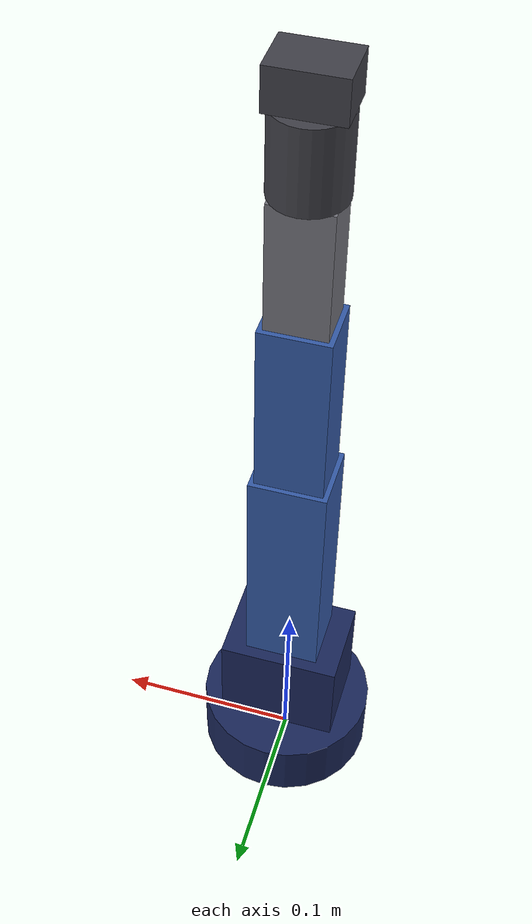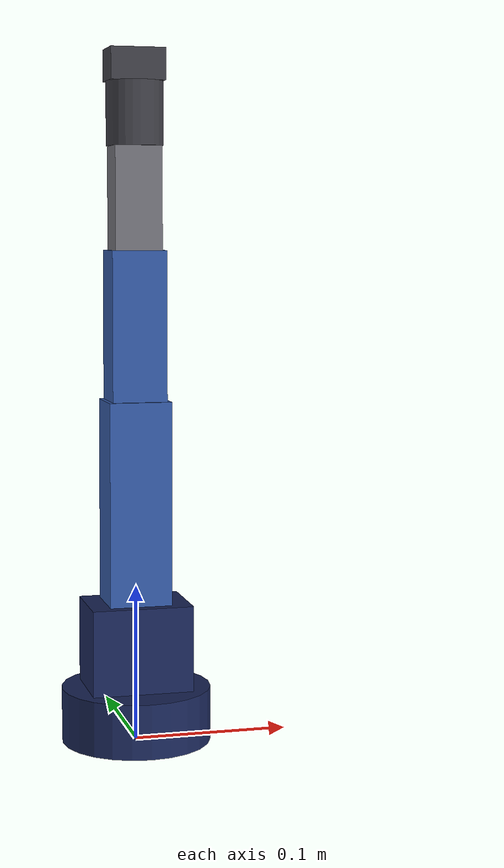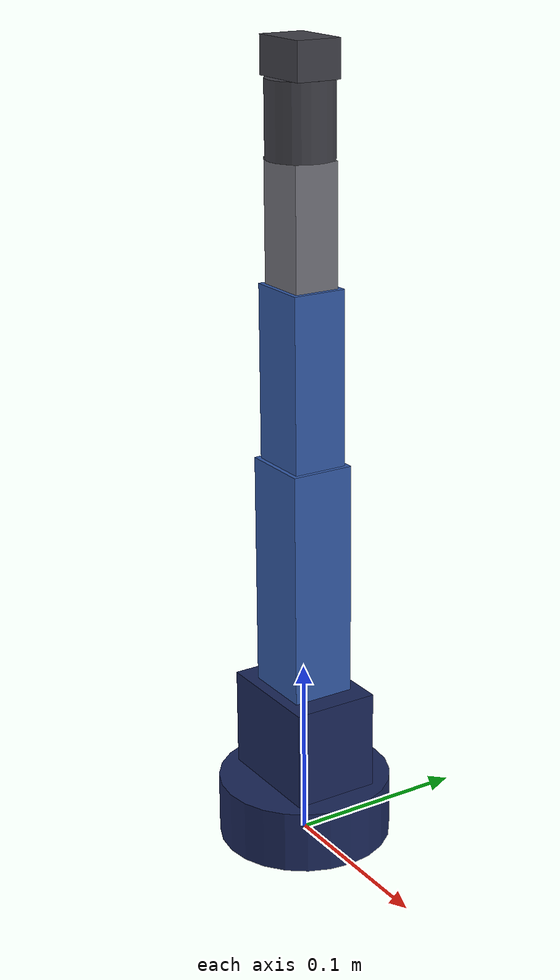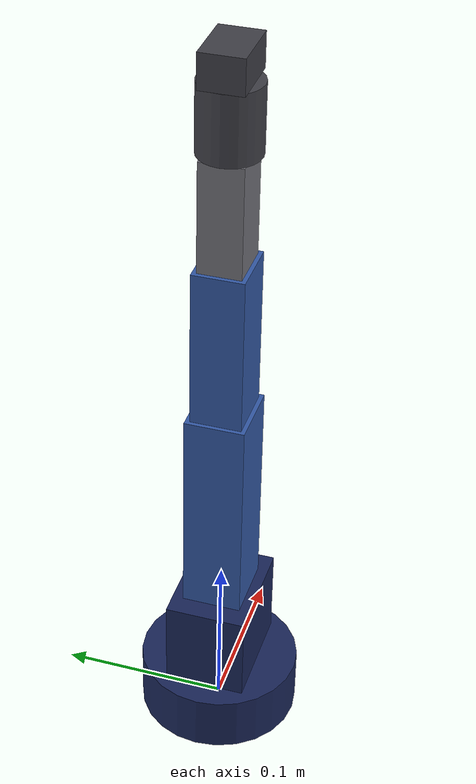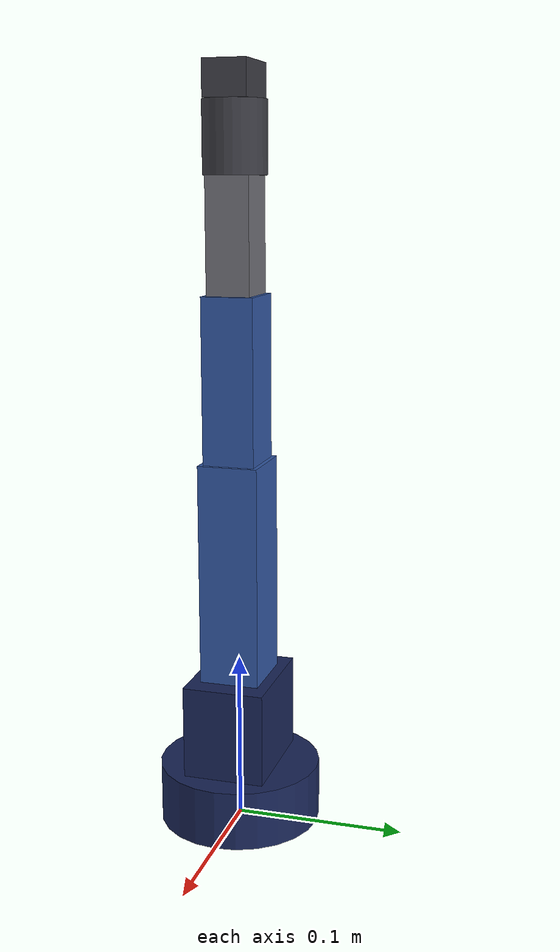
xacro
<?xml version="1.0"?>
<robot xmlns:xacro="http://www.ros.org/wiki/xacro" name="soarm101">

  <!-- Include ros2_control configuration -->
  <xacro:include filename="$(find soarm101_description)/urdf/soarm101.ros2_control.xacro"/>

  <!-- Colors -->
  <material name="soarm_dark_blue">
    <color rgba="0.1 0.15 0.35 1.0"/>
  </material>
  <material name="soarm_light_blue">
    <color rgba="0.2 0.35 0.65 1.0"/>
  </material>
  <material name="soarm_grey">
    <color rgba="0.45 0.45 0.48 1.0"/>
  </material>
  <material name="soarm_dark_grey">
    <color rgba="0.25 0.25 0.28 1.0"/>
  </material>
  <material name="soarm_white">
    <color rgba="0.9 0.9 0.92 1.0"/>
  </material>
  <material name="soarm_black">
    <color rgba="0.1 0.1 0.1 1.0"/>
  </material>

  <!-- World link (dummy root for KDL compatibility) -->
  <link name="world"/>

  <joint name="base_joint" type="fixed">
    <parent link="world"/>
    <child link="base_link"/>
    <origin xyz="0 0 0" rpy="0 0 0"/>
  </joint>

  <!-- ==================== BASE ==================== -->
  <link name="base_link">
    <visual>
      <geometry>
        <cylinder radius="0.048" length="0.035"/>
      </geometry>
      <material name="soarm_dark_blue"/>
      <origin xyz="0 0 0.0175" rpy="0 0 0"/>
    </visual>
    <collision>
      <geometry>
        <cylinder radius="0.048" length="0.035"/>
      </geometry>
      <origin xyz="0 0 0.0175" rpy="0 0 0"/>
    </collision>
  </link>

  <!-- ==================== SHOULDER (Joint 1: base rotation) ==================== -->
  <link name="shoulder_link">
    <visual>
      <!-- Shoulder housing -->
      <geometry>
        <box size="0.065 0.048 0.055"/>
      </geometry>
      <material name="soarm_dark_blue"/>
      <origin xyz="0 0 0.0275" rpy="0 0 0"/>
    </visual>
    <collision>
      <geometry>
        <box size="0.065 0.048 0.055"/>
      </geometry>
      <origin xyz="0 0 0.0275" rpy="0 0 0"/>
    </collision>
  </link>

  <joint name="shoulder_pan" type="revolute">
    <parent link="base_link"/>
    <child link="shoulder_link"/>
    <origin xyz="0 0 0.035" rpy="0 0 0"/>
    <axis xyz="0 0 1"/>
    <limit lower="-3.14159" upper="3.14159" effort="10.0" velocity="3.14"/>
    <dynamics damping="0.5" friction="0.1"/>
  </joint>

  <!-- ==================== UPPER ARM (Joint 2: shoulder lift) ==================== -->
  <link name="upper_arm_link">
    <visual>
      <!-- Upper arm link - the main long segment -->
      <geometry>
        <box size="0.040 0.035 0.130"/>
      </geometry>
      <material name="soarm_light_blue"/>
      <origin xyz="0 0 0.065" rpy="0 0 0"/>
    </visual>
    <collision>
      <geometry>
        <box size="0.040 0.035 0.130"/>
      </geometry>
      <origin xyz="0 0 0.065" rpy="0 0 0"/>
    </collision>
  </link>

  <joint name="shoulder_lift" type="revolute">
    <parent link="shoulder_link"/>
    <child link="upper_arm_link"/>
    <origin xyz="0 0 0.055" rpy="0 0 0"/>
    <axis xyz="0 1 0"/>
    <limit lower="-1.57" upper="1.57" effort="10.0" velocity="3.14"/>
    <dynamics damping="0.5" friction="0.1"/>
  </joint>

  <!-- ==================== FOREARM (Joint 3: elbow flex) ==================== -->
  <link name="forearm_link">
    <visual>
      <!-- Forearm segment -->
      <geometry>
        <box size="0.035 0.030 0.095"/>
      </geometry>
      <material name="soarm_light_blue"/>
      <origin xyz="0 0 0.0475" rpy="0 0 0"/>
    </visual>
    <collision>
      <geometry>
        <box size="0.035 0.030 0.095"/>
      </geometry>
      <origin xyz="0 0 0.0475" rpy="0 0 0"/>
    </collision>
  </link>

  <joint name="elbow_flex" type="revolute">
    <parent link="upper_arm_link"/>
    <child link="forearm_link"/>
    <origin xyz="0 0 0.130" rpy="0 0 0"/>
    <axis xyz="0 1 0"/>
    <limit lower="-1.57" upper="1.57" effort="8.0" velocity="3.14"/>
    <dynamics damping="0.3" friction="0.08"/>
  </joint>

  <!-- ==================== WRIST (Joint 4: wrist flex) ==================== -->
  <link name="wrist_link">
    <visual>
      <!-- Wrist segment -->
      <geometry>
        <box size="0.030 0.025 0.065"/>
      </geometry>
      <material name="soarm_grey"/>
      <origin xyz="0 0 0.0325" rpy="0 0 0"/>
    </visual>
    <collision>
      <geometry>
        <box size="0.030 0.025 0.065"/>
      </geometry>
      <origin xyz="0 0 0.0325" rpy="0 0 0"/>
    </collision>
  </link>

  <joint name="wrist_flex" type="revolute">
    <parent link="forearm_link"/>
    <child link="wrist_link"/>
    <origin xyz="0 0 0.095" rpy="0 0 0"/>
    <axis xyz="0 1 0"/>
    <limit lower="-1.57" upper="1.57" effort="5.0" velocity="3.14"/>
    <dynamics damping="0.2" friction="0.05"/>
  </joint>

  <!-- ==================== HAND (Joint 5: wrist roll) ==================== -->
  <link name="hand_link">
    <visual>
      <!-- Hand / wrist roll segment -->
      <geometry>
        <cylinder radius="0.018" length="0.040"/>
      </geometry>
      <material name="soarm_dark_grey"/>
      <origin xyz="0 0 0.020" rpy="0 0 0"/>
    </visual>
    <collision>
      <geometry>
        <cylinder radius="0.018" length="0.040"/>
      </geometry>
      <origin xyz="0 0 0.020" rpy="0 0 0"/>
    </collision>
  </link>

  <joint name="wrist_roll" type="revolute">
    <parent link="wrist_link"/>
    <child link="hand_link"/>
    <origin xyz="0 0 0.065" rpy="0 0 0"/>
    <axis xyz="0 0 1"/>
    <limit lower="-3.14159" upper="3.14159" effort="3.0" velocity="3.14"/>
    <dynamics damping="0.1" friction="0.03"/>
  </joint>

  <!-- ==================== GRIPPER (Joint 6: gripper open/close) ==================== -->
  <link name="gripper">
    <visual>
      <!-- Gripper base -->
      <geometry>
        <box size="0.035 0.025 0.020"/>
      </geometry>
      <material name="soarm_dark_grey"/>
      <origin xyz="0 0 0.010" rpy="0 0 0"/>
    </visual>
    <collision>
      <geometry>
        <box size="0.035 0.025 0.020"/>
      </geometry>
      <origin xyz="0 0 0.010" rpy="0 0 0"/>
    </collision>
  </link>

  <joint name="gripper" type="revolute">
    <parent link="hand_link"/>
    <child link="gripper"/>
    <origin xyz="0 0 0.040" rpy="0 0 0"/>
    <axis xyz="0 1 0"/>
    <limit lower="0.0" upper="0.8" effort="2.0" velocity="3.14"/>
    <dynamics damping="0.05" friction="0.01"/>
  </joint>

  <!-- End effector link (tool center point) -->
  <link name="ee_link"/>

  <joint name="ee_joint" type="fixed">
    <parent link="gripper"/>
    <child link="ee_link"/>
    <origin xyz="0 0 0.020" rpy="0 0 0"/>
  </joint>

  <!-- Add ros2_control -->
  <xacro:soarm101_ros2_control/>

</robot>
